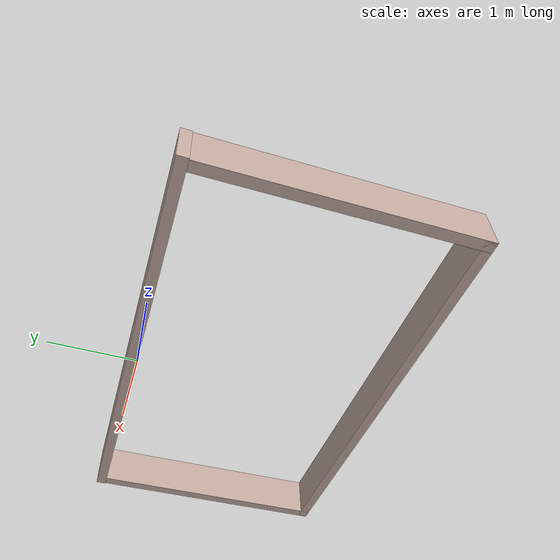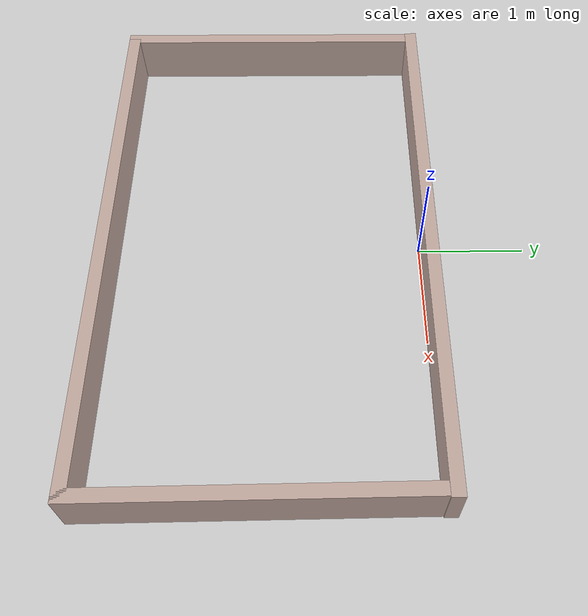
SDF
<?xml version='1.0'?>
<sdf version='1.7'>
  <model name='from'>
    <pose>0.0 0.0 0 0 -0 0</pose>

    <link name='Wall_13'>
      <collision name='Wall_13_Collision'>
        <geometry>
          <box>
            <size>5.12 0.12 0.5</size>
          </box>
        </geometry>
        <pose>0 0 0.25 0 -0 0</pose>
      </collision>
      <visual name='Wall_13_Visual'>
        <pose>0 0 0.25 0 -0 0</pose>
        <geometry>
          <box>
            <size>5.12 0.12 0.5</size>
          </box>
        </geometry>
        <material>
          <script>
            <uri>file://media/materials/scripts/gazebo.material</uri>
            <name>Gazebo/Grey</name>
          </script>
          <ambient>0.760784 0.662745 0.627451 1</ambient>
        </material>
        <meta>
          <layer>0</layer>
        </meta>
      </visual>
      <pose>0.0 0.06 0 0 -0 0</pose>
    </link>
    <link name='Wall_15'>
      <collision name='Wall_15_Collision'>
        <geometry>
          <box>
            <size>5.12 0.12 0.5</size>
          </box>
        </geometry>
        <pose>0 0 0.25 0 -0 0</pose>
      </collision>
      <visual name='Wall_15_Visual'>
        <pose>0 0 0.25 0 -0 0</pose>
        <geometry>
          <box>
            <size>5.12 0.12 0.5</size>
          </box>
        </geometry>
        <material>
          <script>
            <uri>file://media/materials/scripts/gazebo.material</uri>
            <name>Gazebo/Grey</name>
          </script>
          <ambient>0.760784 0.662745 0.627451 1</ambient>
        </material>
        <meta>
          <layer>0</layer>
        </meta>
      </visual>
      <pose>0.0 -2.94 0 0 -0 0</pose>
    </link>
    <link name='Wall_17'>
      <collision name='Wall_17_Collision'>
        <geometry>
          <box>
            <size>3.0 0.12 0.5</size>
          </box>
        </geometry>
        <pose>0 0 0.25 0 -0 0</pose>
      </collision>
      <visual name='Wall_17_Visual'>
        <pose>0 0 0.25 0 -0 0</pose>
        <geometry>
          <box>
            <size>3.0 0.12 0.5</size>
          </box>
        </geometry>
        <material>
          <script>
            <uri>file://media/materials/scripts/gazebo.material</uri>
            <name>Gazebo/Grey</name>
          </script>
          <ambient>0.760784 0.662745 0.627451 1</ambient>
        </material>
        <meta>
          <layer>0</layer>
        </meta>
      </visual>
      <pose>2.5 -1.5 0 0 -0 -1.5636</pose>
    </link>

    <link name='Wall_5'>
      <collision name='Wall_5_Collision'>
        <geometry>
          <box>
            <size>3.0 0.12 0.5</size>
          </box>
        </geometry>
        <pose>0 0 0.25 0 -0 0</pose>
      </collision>
      <visual name='Wall_5_Visual'>
        <pose>0 0 0.25 0 -0 0</pose>
        <geometry>
          <box>
            <size>3.0 0.12 0.5</size>
          </box>
        </geometry>
        <material>
          <script>
            <uri>file://media/materials/scripts/gazebo.material</uri>
            <name>Gazebo/Grey</name>
          </script>
          <ambient>0.760784 0.662745 0.627451 1</ambient>
        </material>
        <meta>
          <layer>0</layer>
        </meta>
      </visual>
      <pose>-2.5 -1.5 0 0 -0 1.5636</pose>
    </link>
    <static>1</static>
  </model>
</sdf>
